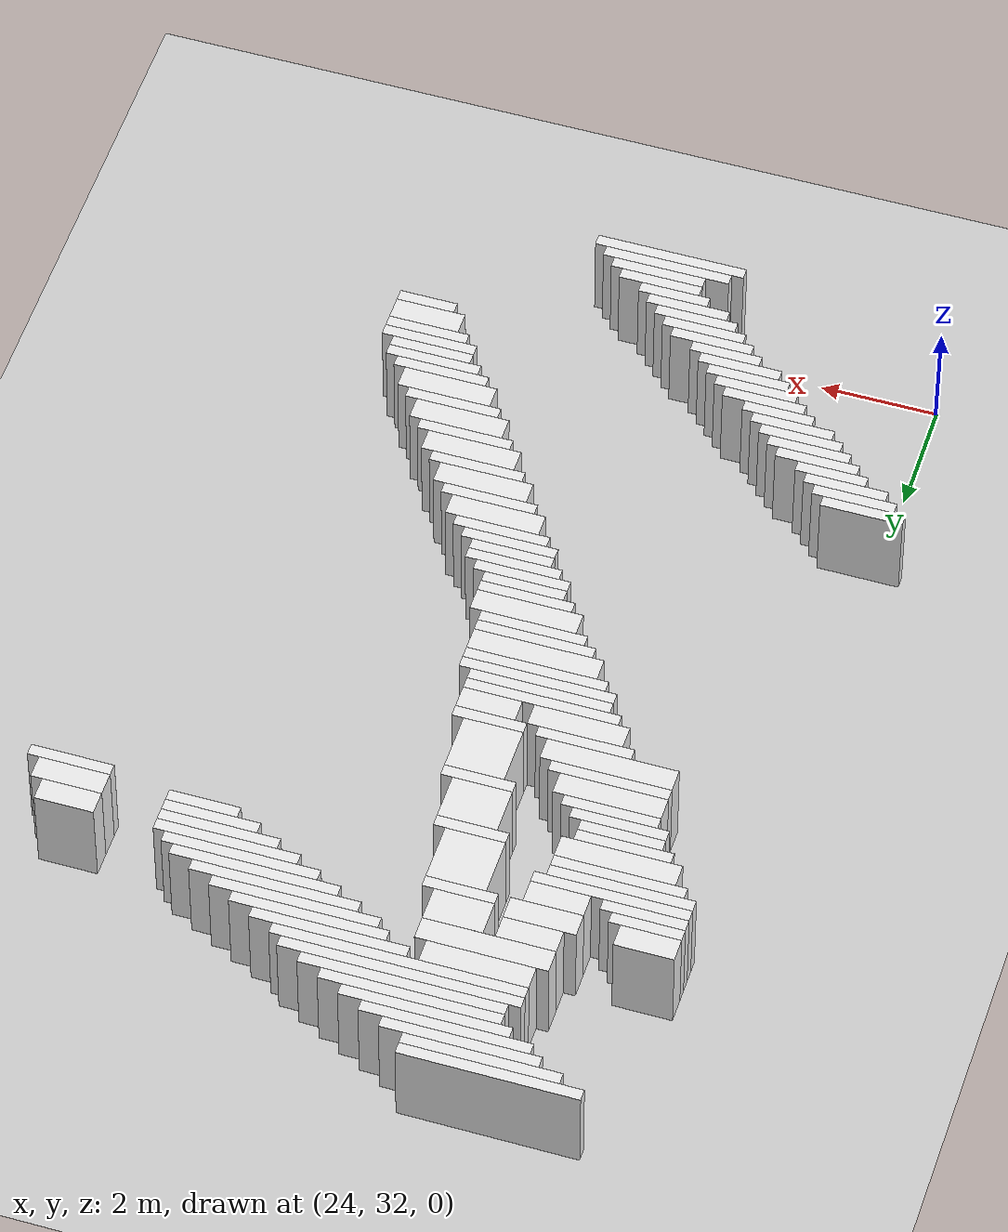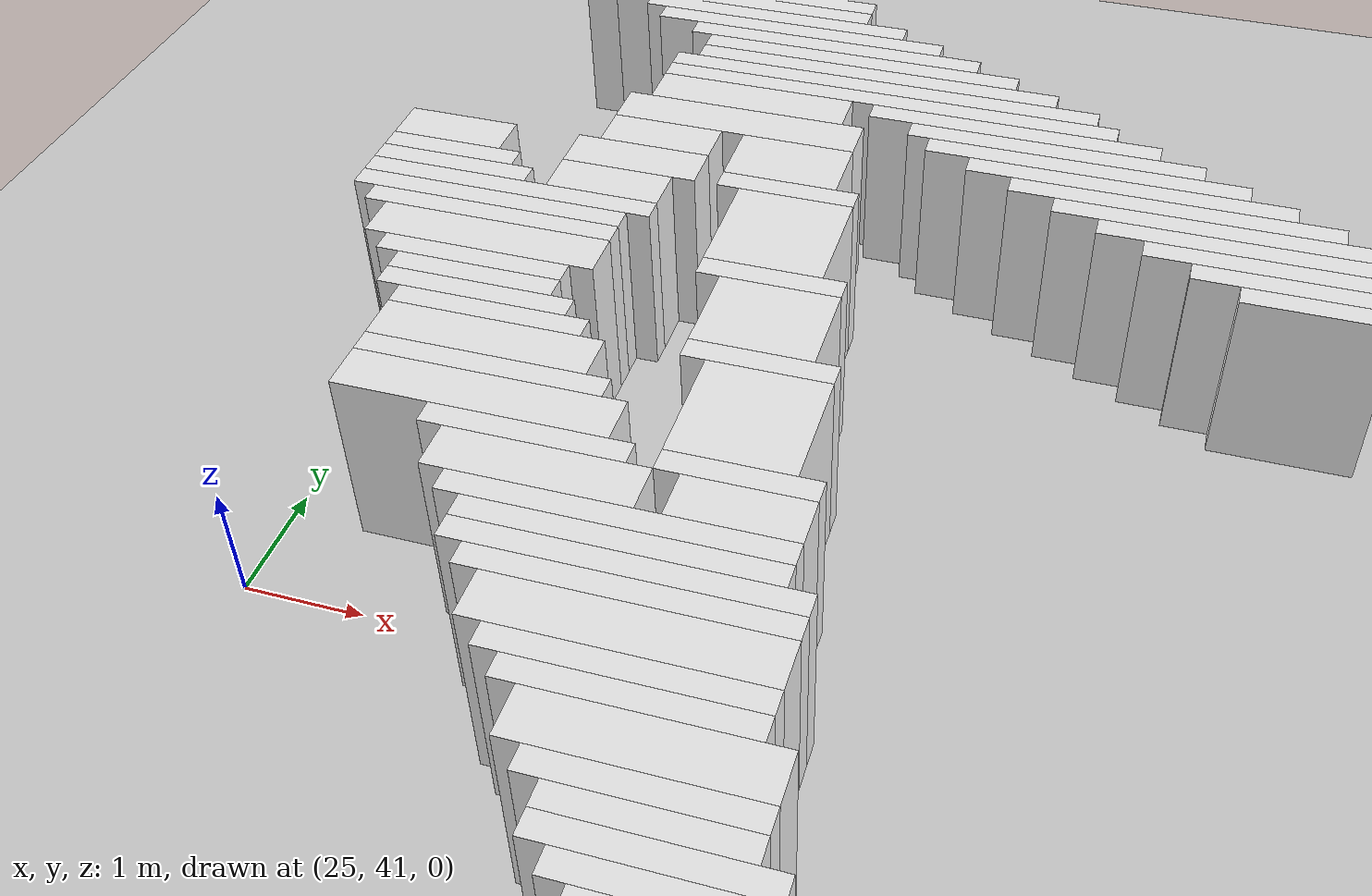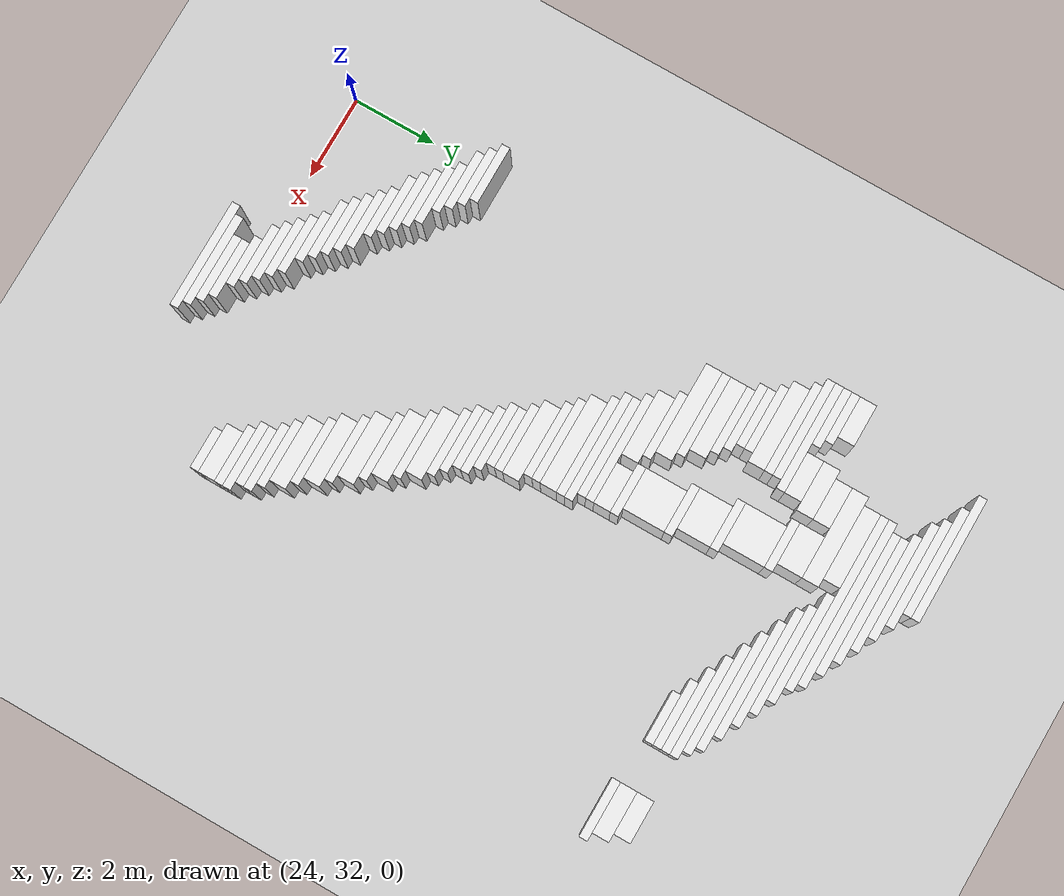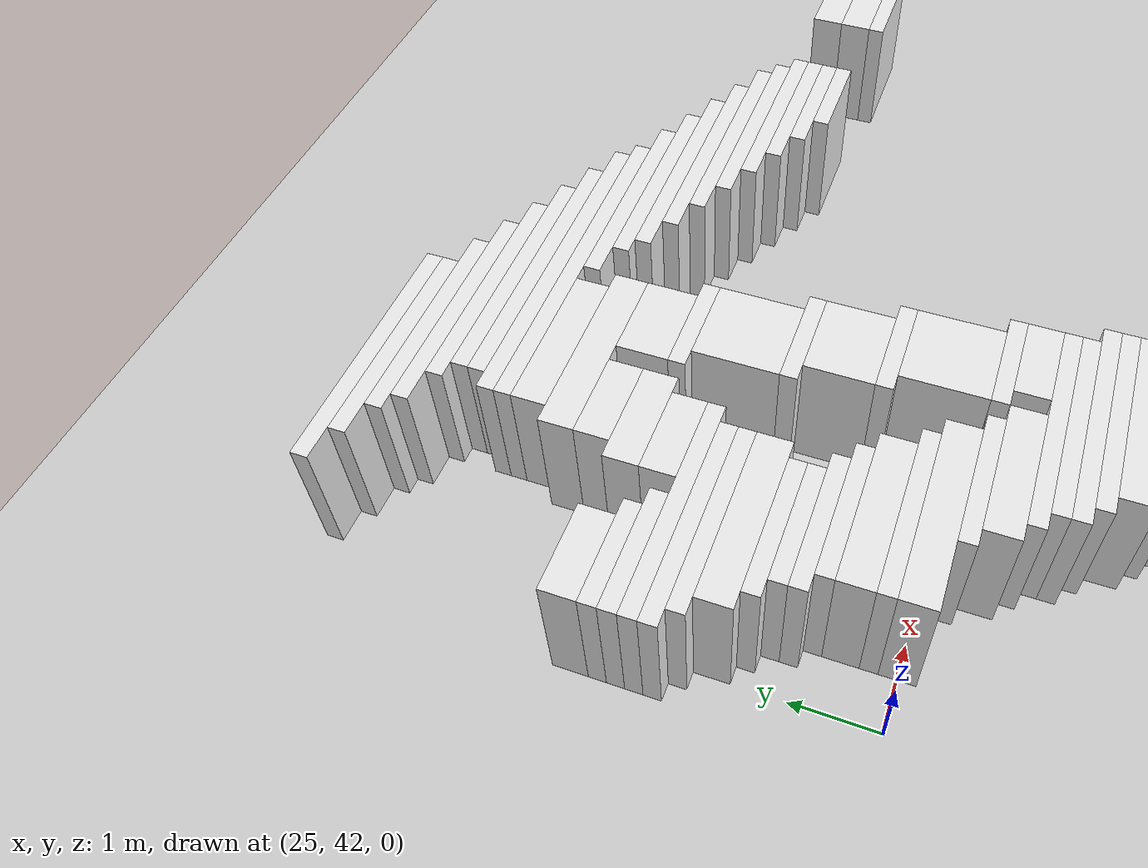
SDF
<sdf version="1.7">
 <world name="default">
  <model name="ground_plane">
   <static>1</static>
   <link name="link">
    <collision name="collision">
     <geometry><plane><normal>0 0 1</normal><size>120 120</size></plane></geometry>
    </collision>
    <visual name="visual">
     <geometry><plane><normal>0 0 1</normal><size>120 120</size></plane></geometry>
     <material>
      <script><uri>file://media/materials/scripts/gazebo.material</uri><name>Gazebo/Grey</name></script>
     </material>
    </visual>
   </link>
  </model>
  <model name="random_complex_02_model">
   <static>1</static>
   <link name="obs_6">
    <pose>26.7000 48.3000 0.8000 0 0 0</pose>
    <collision name="obs_6_col"><geometry><box><size>3.0000 0.2000 1.6000</size></box></geometry></collision>
    <visual name="obs_6_vis">
     <geometry><box><size>3.0000 0.2000 1.6000</size></box></geometry>
     <material>
      <script><uri>file://media/materials/scripts/gazebo.material</uri><name>Gazebo/White</name></script>
     </material>
    </visual>
   </link>
   <link name="obs_10">
    <pose>26.9000 48.1000 0.8000 0 0 0</pose>
    <collision name="obs_10_col"><geometry><box><size>2.6000 0.2000 1.6000</size></box></geometry></collision>
    <visual name="obs_10_vis">
     <geometry><box><size>2.6000 0.2000 1.6000</size></box></geometry>
     <material>
      <script><uri>file://media/materials/scripts/gazebo.material</uri><name>Gazebo/White</name></script>
     </material>
    </visual>
   </link>
   <link name="obs_17">
    <pose>27.3000 47.9000 0.8000 0 0 0</pose>
    <collision name="obs_17_col"><geometry><box><size>2.6000 0.2000 1.6000</size></box></geometry></collision>
    <visual name="obs_17_vis">
     <geometry><box><size>2.6000 0.2000 1.6000</size></box></geometry>
     <material>
      <script><uri>file://media/materials/scripts/gazebo.material</uri><name>Gazebo/White</name></script>
     </material>
    </visual>
   </link>
   <link name="obs_24">
    <pose>27.6000 47.7000 0.8000 0 0 0</pose>
    <collision name="obs_24_col"><geometry><box><size>2.8000 0.2000 1.6000</size></box></geometry></collision>
    <visual name="obs_24_vis">
     <geometry><box><size>2.8000 0.2000 1.6000</size></box></geometry>
     <material>
      <script><uri>file://media/materials/scripts/gazebo.material</uri><name>Gazebo/White</name></script>
     </material>
    </visual>
   </link>
   <link name="obs_32">
    <pose>28.0000 47.5000 0.8000 0 0 0</pose>
    <collision name="obs_32_col"><geometry><box><size>2.8000 0.2000 1.6000</size></box></geometry></collision>
    <visual name="obs_32_vis">
     <geometry><box><size>2.8000 0.2000 1.6000</size></box></geometry>
     <material>
      <script><uri>file://media/materials/scripts/gazebo.material</uri><name>Gazebo/White</name></script>
     </material>
    </visual>
   </link>
   <link name="obs_39">
    <pose>28.3000 47.3000 0.8000 0 0 0</pose>
    <collision name="obs_39_col"><geometry><box><size>3.0000 0.2000 1.6000</size></box></geometry></collision>
    <visual name="obs_39_vis">
     <geometry><box><size>3.0000 0.2000 1.6000</size></box></geometry>
     <material>
      <script><uri>file://media/materials/scripts/gazebo.material</uri><name>Gazebo/White</name></script>
     </material>
    </visual>
   </link>
   <link name="obs_46">
    <pose>28.5000 47.1000 0.8000 0 0 0</pose>
    <collision name="obs_46_col"><geometry><box><size>3.4000 0.2000 1.6000</size></box></geometry></collision>
    <visual name="obs_46_vis">
     <geometry><box><size>3.4000 0.2000 1.6000</size></box></geometry>
     <material>
      <script><uri>file://media/materials/scripts/gazebo.material</uri><name>Gazebo/White</name></script>
     </material>
    </visual>
   </link>
   <link name="obs_52">
    <pose>28.6000 46.9000 0.8000 0 0 0</pose>
    <collision name="obs_52_col"><geometry><box><size>4.0000 0.2000 1.6000</size></box></geometry></collision>
    <visual name="obs_52_vis">
     <geometry><box><size>4.0000 0.2000 1.6000</size></box></geometry>
     <material>
      <script><uri>file://media/materials/scripts/gazebo.material</uri><name>Gazebo/White</name></script>
     </material>
    </visual>
   </link>
   <link name="obs_59">
    <pose>28.7000 46.7000 0.8000 0 0 0</pose>
    <collision name="obs_59_col"><geometry><box><size>4.2000 0.2000 1.6000</size></box></geometry></collision>
    <visual name="obs_59_vis">
     <geometry><box><size>4.2000 0.2000 1.6000</size></box></geometry>
     <material>
      <script><uri>file://media/materials/scripts/gazebo.material</uri><name>Gazebo/White</name></script>
     </material>
    </visual>
   </link>
   <link name="obs_66">
    <pose>29.9000 46.5000 0.8000 0 0 0</pose>
    <collision name="obs_66_col"><geometry><box><size>2.6000 0.2000 1.6000</size></box></geometry></collision>
    <visual name="obs_66_vis">
     <geometry><box><size>2.6000 0.2000 1.6000</size></box></geometry>
     <material>
      <script><uri>file://media/materials/scripts/gazebo.material</uri><name>Gazebo/White</name></script>
     </material>
    </visual>
   </link>
   <link name="obs_68">
    <pose>27.5000 46.4000 0.8000 0 0 0</pose>
    <collision name="obs_68_col"><geometry><box><size>1.8000 0.4000 1.6000</size></box></geometry></collision>
    <visual name="obs_68_vis">
     <geometry><box><size>1.8000 0.4000 1.6000</size></box></geometry>
     <material>
      <script><uri>file://media/materials/scripts/gazebo.material</uri><name>Gazebo/White</name></script>
     </material>
    </visual>
   </link>
   <link name="obs_74">
    <pose>30.3000 46.3000 0.8000 0 0 0</pose>
    <collision name="obs_74_col"><geometry><box><size>2.6000 0.2000 1.6000</size></box></geometry></collision>
    <visual name="obs_74_vis">
     <geometry><box><size>2.6000 0.2000 1.6000</size></box></geometry>
     <material>
      <script><uri>file://media/materials/scripts/gazebo.material</uri><name>Gazebo/White</name></script>
     </material>
    </visual>
   </link>
   <link name="obs_82">
    <pose>30.6000 46.1000 0.8000 0 0 0</pose>
    <collision name="obs_82_col"><geometry><box><size>2.8000 0.2000 1.6000</size></box></geometry></collision>
    <visual name="obs_82_vis">
     <geometry><box><size>2.8000 0.2000 1.6000</size></box></geometry>
     <material>
      <script><uri>file://media/materials/scripts/gazebo.material</uri><name>Gazebo/White</name></script>
     </material>
    </visual>
   </link>
   <link name="obs_84">
    <pose>27.5000 46.0000 0.8000 0 0 0</pose>
    <collision name="obs_84_col"><geometry><box><size>2.2000 0.4000 1.6000</size></box></geometry></collision>
    <visual name="obs_84_vis">
     <geometry><box><size>2.2000 0.4000 1.6000</size></box></geometry>
     <material>
      <script><uri>file://media/materials/scripts/gazebo.material</uri><name>Gazebo/White</name></script>
     </material>
    </visual>
   </link>
   <link name="obs_90">
    <pose>31.0000 45.9000 0.8000 0 0 0</pose>
    <collision name="obs_90_col"><geometry><box><size>2.8000 0.2000 1.6000</size></box></geometry></collision>
    <visual name="obs_90_vis">
     <geometry><box><size>2.8000 0.2000 1.6000</size></box></geometry>
     <material>
      <script><uri>file://media/materials/scripts/gazebo.material</uri><name>Gazebo/White</name></script>
     </material>
    </visual>
   </link>
   <link name="obs_97">
    <pose>31.4000 45.7000 0.8000 0 0 0</pose>
    <collision name="obs_97_col"><geometry><box><size>2.8000 0.2000 1.6000</size></box></geometry></collision>
    <visual name="obs_97_vis">
     <geometry><box><size>2.8000 0.2000 1.6000</size></box></geometry>
     <material>
      <script><uri>file://media/materials/scripts/gazebo.material</uri><name>Gazebo/White</name></script>
     </material>
    </visual>
   </link>
   <link name="obs_98">
    <pose>26.9000 45.6000 0.8000 0 0 0</pose>
    <collision name="obs_98_col"><geometry><box><size>1.0000 0.4000 1.6000</size></box></geometry></collision>
    <visual name="obs_98_vis">
     <geometry><box><size>1.0000 0.4000 1.6000</size></box></geometry>
     <material>
      <script><uri>file://media/materials/scripts/gazebo.material</uri><name>Gazebo/White</name></script>
     </material>
    </visual>
   </link>
   <link name="obs_104">
    <pose>31.7000 45.5000 0.8000 0 0 0</pose>
    <collision name="obs_104_col"><geometry><box><size>2.6000 0.2000 1.6000</size></box></geometry></collision>
    <visual name="obs_104_vis">
     <geometry><box><size>2.6000 0.2000 1.6000</size></box></geometry>
     <material>
      <script><uri>file://media/materials/scripts/gazebo.material</uri><name>Gazebo/White</name></script>
     </material>
    </visual>
   </link>
   <link name="obs_106">
    <pose>28.1000 45.5000 0.8000 0 0 0</pose>
    <collision name="obs_106_col"><geometry><box><size>1.0000 0.6000 1.6000</size></box></geometry></collision>
    <visual name="obs_106_vis">
     <geometry><box><size>1.0000 0.6000 1.6000</size></box></geometry>
     <material>
      <script><uri>file://media/materials/scripts/gazebo.material</uri><name>Gazebo/White</name></script>
     </material>
    </visual>
   </link>
   <link name="obs_114">
    <pose>32.0000 45.3000 0.8000 0 0 0</pose>
    <collision name="obs_114_col"><geometry><box><size>2.4000 0.2000 1.6000</size></box></geometry></collision>
    <visual name="obs_114_vis">
     <geometry><box><size>2.4000 0.2000 1.6000</size></box></geometry>
     <material>
      <script><uri>file://media/materials/scripts/gazebo.material</uri><name>Gazebo/White</name></script>
     </material>
    </visual>
   </link>
   <link name="obs_115">
    <pose>25.1000 45.2000 0.8000 0 0 0</pose>
    <collision name="obs_115_col"><geometry><box><size>1.0000 0.4000 1.6000</size></box></geometry></collision>
    <visual name="obs_115_vis">
     <geometry><box><size>1.0000 0.4000 1.6000</size></box></geometry>
     <material>
      <script><uri>file://media/materials/scripts/gazebo.material</uri><name>Gazebo/White</name></script>
     </material>
    </visual>
   </link>
   <link name="obs_116">
    <pose>26.8000 45.2000 0.8000 0 0 0</pose>
    <collision name="obs_116_col"><geometry><box><size>1.2000 0.4000 1.6000</size></box></geometry></collision>
    <visual name="obs_116_vis">
     <geometry><box><size>1.2000 0.4000 1.6000</size></box></geometry>
     <material>
      <script><uri>file://media/materials/scripts/gazebo.material</uri><name>Gazebo/White</name></script>
     </material>
    </visual>
   </link>
   <link name="obs_117">
    <pose>34.7000 45.2000 0.8000 0 0 0</pose>
    <collision name="obs_117_col"><geometry><box><size>1.0000 0.4000 1.6000</size></box></geometry></collision>
    <visual name="obs_117_vis">
     <geometry><box><size>1.0000 0.4000 1.6000</size></box></geometry>
     <material>
      <script><uri>file://media/materials/scripts/gazebo.material</uri><name>Gazebo/White</name></script>
     </material>
    </visual>
   </link>
   <link name="obs_125">
    <pose>28.2000 45.1000 0.8000 0 0 0</pose>
    <collision name="obs_125_col"><geometry><box><size>1.2000 0.2000 1.6000</size></box></geometry></collision>
    <visual name="obs_125_vis">
     <geometry><box><size>1.2000 0.2000 1.6000</size></box></geometry>
     <material>
      <script><uri>file://media/materials/scripts/gazebo.material</uri><name>Gazebo/White</name></script>
     </material>
    </visual>
   </link>
   <link name="obs_126">
    <pose>32.2000 45.1000 0.8000 0 0 0</pose>
    <collision name="obs_126_col"><geometry><box><size>2.0000 0.2000 1.6000</size></box></geometry></collision>
    <visual name="obs_126_vis">
     <geometry><box><size>2.0000 0.2000 1.6000</size></box></geometry>
     <material>
      <script><uri>file://media/materials/scripts/gazebo.material</uri><name>Gazebo/White</name></script>
     </material>
    </visual>
   </link>
   <link name="obs_133">
    <pose>25.2000 44.9000 0.8000 0 0 0</pose>
    <collision name="obs_133_col"><geometry><box><size>1.2000 0.2000 1.6000</size></box></geometry></collision>
    <visual name="obs_133_vis">
     <geometry><box><size>1.2000 0.2000 1.6000</size></box></geometry>
     <material>
      <script><uri>file://media/materials/scripts/gazebo.material</uri><name>Gazebo/White</name></script>
     </material>
    </visual>
   </link>
   <link name="obs_134">
    <pose>32.4000 44.9000 0.8000 0 0 0</pose>
    <collision name="obs_134_col"><geometry><box><size>1.6000 0.2000 1.6000</size></box></geometry></collision>
    <visual name="obs_134_vis">
     <geometry><box><size>1.6000 0.2000 1.6000</size></box></geometry>
     <material>
      <script><uri>file://media/materials/scripts/gazebo.material</uri><name>Gazebo/White</name></script>
     </material>
    </visual>
   </link>
   <link name="obs_135">
    <pose>26.7000 44.8000 0.8000 0 0 0</pose>
    <collision name="obs_135_col"><geometry><box><size>1.0000 0.4000 1.6000</size></box></geometry></collision>
    <visual name="obs_135_vis">
     <geometry><box><size>1.0000 0.4000 1.6000</size></box></geometry>
     <material>
      <script><uri>file://media/materials/scripts/gazebo.material</uri><name>Gazebo/White</name></script>
     </material>
    </visual>
   </link>
   <link name="obs_136">
    <pose>34.8000 44.8000 0.8000 0 0 0</pose>
    <collision name="obs_136_col"><geometry><box><size>1.2000 0.4000 1.6000</size></box></geometry></collision>
    <visual name="obs_136_vis">
     <geometry><box><size>1.2000 0.4000 1.6000</size></box></geometry>
     <material>
      <script><uri>file://media/materials/scripts/gazebo.material</uri><name>Gazebo/White</name></script>
     </material>
    </visual>
   </link>
   <link name="obs_141">
    <pose>25.3000 44.7000 0.8000 0 0 0</pose>
    <collision name="obs_141_col"><geometry><box><size>1.4000 0.2000 1.6000</size></box></geometry></collision>
    <visual name="obs_141_vis">
     <geometry><box><size>1.4000 0.2000 1.6000</size></box></geometry>
     <material>
      <script><uri>file://media/materials/scripts/gazebo.material</uri><name>Gazebo/White</name></script>
     </material>
    </visual>
   </link>
   <link name="obs_142">
    <pose>32.6000 44.7000 0.8000 0 0 0</pose>
    <collision name="obs_142_col"><geometry><box><size>1.2000 0.2000 1.6000</size></box></geometry></collision>
    <visual name="obs_142_vis">
     <geometry><box><size>1.2000 0.2000 1.6000</size></box></geometry>
     <material>
      <script><uri>file://media/materials/scripts/gazebo.material</uri><name>Gazebo/White</name></script>
     </material>
    </visual>
   </link>
   <link name="obs_149">
    <pose>25.9000 44.5000 0.8000 0 0 0</pose>
    <collision name="obs_149_col"><geometry><box><size>2.6000 0.2000 1.6000</size></box></geometry></collision>
    <visual name="obs_149_vis">
     <geometry><box><size>2.6000 0.2000 1.6000</size></box></geometry>
     <material>
      <script><uri>file://media/materials/scripts/gazebo.material</uri><name>Gazebo/White</name></script>
     </material>
    </visual>
   </link>
   <link name="obs_150">
    <pose>34.9000 44.5000 0.8000 0 0 0</pose>
    <collision name="obs_150_col"><geometry><box><size>1.4000 0.2000 1.6000</size></box></geometry></collision>
    <visual name="obs_150_vis">
     <geometry><box><size>1.4000 0.2000 1.6000</size></box></geometry>
     <material>
      <script><uri>file://media/materials/scripts/gazebo.material</uri><name>Gazebo/White</name></script>
     </material>
    </visual>
   </link>
   <link name="obs_155">
    <pose>25.8000 44.3000 0.8000 0 0 0</pose>
    <collision name="obs_155_col"><geometry><box><size>2.4000 0.2000 1.6000</size></box></geometry></collision>
    <visual name="obs_155_vis">
     <geometry><box><size>2.4000 0.2000 1.6000</size></box></geometry>
     <material>
      <script><uri>file://media/materials/scripts/gazebo.material</uri><name>Gazebo/White</name></script>
     </material>
    </visual>
   </link>
   <link name="obs_156">
    <pose>28.3000 44.5000 0.8000 0 0 0</pose>
    <collision name="obs_156_col"><geometry><box><size>1.0000 1.0000 1.6000</size></box></geometry></collision>
    <visual name="obs_156_vis">
     <geometry><box><size>1.0000 1.0000 1.6000</size></box></geometry>
     <material>
      <script><uri>file://media/materials/scripts/gazebo.material</uri><name>Gazebo/White</name></script>
     </material>
    </visual>
   </link>
   <link name="obs_163">
    <pose>25.9000 44.1000 0.8000 0 0 0</pose>
    <collision name="obs_163_col"><geometry><box><size>2.2000 0.2000 1.6000</size></box></geometry></collision>
    <visual name="obs_163_vis">
     <geometry><box><size>2.2000 0.2000 1.6000</size></box></geometry>
     <material>
      <script><uri>file://media/materials/scripts/gazebo.material</uri><name>Gazebo/White</name></script>
     </material>
    </visual>
   </link>
   <link name="obs_171">
    <pose>28.4000 43.9000 0.8000 0 0 0</pose>
    <collision name="obs_171_col"><geometry><box><size>1.2000 0.2000 1.6000</size></box></geometry></collision>
    <visual name="obs_171_vis">
     <geometry><box><size>1.2000 0.2000 1.6000</size></box></geometry>
     <material>
      <script><uri>file://media/materials/scripts/gazebo.material</uri><name>Gazebo/White</name></script>
     </material>
    </visual>
   </link>
   <link name="obs_172">
    <pose>26.0000 43.8000 0.8000 0 0 0</pose>
    <collision name="obs_172_col"><geometry><box><size>2.0000 0.4000 1.6000</size></box></geometry></collision>
    <visual name="obs_172_vis">
     <geometry><box><size>2.0000 0.4000 1.6000</size></box></geometry>
     <material>
      <script><uri>file://media/materials/scripts/gazebo.material</uri><name>Gazebo/White</name></script>
     </material>
    </visual>
   </link>
   <link name="obs_185">
    <pose>26.0000 43.5000 0.8000 0 0 0</pose>
    <collision name="obs_185_col"><geometry><box><size>1.6000 0.2000 1.6000</size></box></geometry></collision>
    <visual name="obs_185_vis">
     <geometry><box><size>1.6000 0.2000 1.6000</size></box></geometry>
     <material>
      <script><uri>file://media/materials/scripts/gazebo.material</uri><name>Gazebo/White</name></script>
     </material>
    </visual>
   </link>
   <link name="obs_191">
    <pose>26.1000 43.3000 0.8000 0 0 0</pose>
    <collision name="obs_191_col"><geometry><box><size>1.4000 0.2000 1.6000</size></box></geometry></collision>
    <visual name="obs_191_vis">
     <geometry><box><size>1.4000 0.2000 1.6000</size></box></geometry>
     <material>
      <script><uri>file://media/materials/scripts/gazebo.material</uri><name>Gazebo/White</name></script>
     </material>
    </visual>
   </link>
   <link name="obs_192">
    <pose>28.5000 43.4000 0.8000 0 0 0</pose>
    <collision name="obs_192_col"><geometry><box><size>1.0000 0.8000 1.6000</size></box></geometry></collision>
    <visual name="obs_192_vis">
     <geometry><box><size>1.0000 0.8000 1.6000</size></box></geometry>
     <material>
      <script><uri>file://media/materials/scripts/gazebo.material</uri><name>Gazebo/White</name></script>
     </material>
    </visual>
   </link>
   <link name="obs_199">
    <pose>26.2000 43.1000 0.8000 0 0 0</pose>
    <collision name="obs_199_col"><geometry><box><size>1.6000 0.2000 1.6000</size></box></geometry></collision>
    <visual name="obs_199_vis">
     <geometry><box><size>1.6000 0.2000 1.6000</size></box></geometry>
     <material>
      <script><uri>file://media/materials/scripts/gazebo.material</uri><name>Gazebo/White</name></script>
     </material>
    </visual>
   </link>
   <link name="obs_205">
    <pose>26.4000 42.9000 0.8000 0 0 0</pose>
    <collision name="obs_205_col"><geometry><box><size>1.6000 0.2000 1.6000</size></box></geometry></collision>
    <visual name="obs_205_vis">
     <geometry><box><size>1.6000 0.2000 1.6000</size></box></geometry>
     <material>
      <script><uri>file://media/materials/scripts/gazebo.material</uri><name>Gazebo/White</name></script>
     </material>
    </visual>
   </link>
   <link name="obs_206">
    <pose>28.6000 42.9000 0.8000 0 0 0</pose>
    <collision name="obs_206_col"><geometry><box><size>1.2000 0.2000 1.6000</size></box></geometry></collision>
    <visual name="obs_206_vis">
     <geometry><box><size>1.2000 0.2000 1.6000</size></box></geometry>
     <material>
      <script><uri>file://media/materials/scripts/gazebo.material</uri><name>Gazebo/White</name></script>
     </material>
    </visual>
   </link>
   <link name="obs_215">
    <pose>26.5000 42.6000 0.8000 0 0 0</pose>
    <collision name="obs_215_col"><geometry><box><size>1.8000 0.4000 1.6000</size></box></geometry></collision>
    <visual name="obs_215_vis">
     <geometry><box><size>1.8000 0.4000 1.6000</size></box></geometry>
     <material>
      <script><uri>file://media/materials/scripts/gazebo.material</uri><name>Gazebo/White</name></script>
     </material>
    </visual>
   </link>
   <link name="obs_225">
    <pose>26.6000 42.3000 0.8000 0 0 0</pose>
    <collision name="obs_225_col"><geometry><box><size>2.0000 0.2000 1.6000</size></box></geometry></collision>
    <visual name="obs_225_vis">
     <geometry><box><size>2.0000 0.2000 1.6000</size></box></geometry>
     <material>
      <script><uri>file://media/materials/scripts/gazebo.material</uri><name>Gazebo/White</name></script>
     </material>
    </visual>
   </link>
   <link name="obs_234">
    <pose>28.7000 42.3000 0.8000 0 0 0</pose>
    <collision name="obs_234_col"><geometry><box><size>1.0000 1.0000 1.6000</size></box></geometry></collision>
    <visual name="obs_234_vis">
     <geometry><box><size>1.0000 1.0000 1.6000</size></box></geometry>
     <material>
      <script><uri>file://media/materials/scripts/gazebo.material</uri><name>Gazebo/White</name></script>
     </material>
    </visual>
   </link>
   <link name="obs_236">
    <pose>26.7000 42.0000 0.8000 0 0 0</pose>
    <collision name="obs_236_col"><geometry><box><size>2.2000 0.4000 1.6000</size></box></geometry></collision>
    <visual name="obs_236_vis">
     <geometry><box><size>2.2000 0.4000 1.6000</size></box></geometry>
     <material>
      <script><uri>file://media/materials/scripts/gazebo.material</uri><name>Gazebo/White</name></script>
     </material>
    </visual>
   </link>
   <link name="obs_245">
    <pose>27.2000 41.7000 0.8000 0 0 0</pose>
    <collision name="obs_245_col"><geometry><box><size>1.6000 0.2000 1.6000</size></box></geometry></collision>
    <visual name="obs_245_vis">
     <geometry><box><size>1.6000 0.2000 1.6000</size></box></geometry>
     <material>
      <script><uri>file://media/materials/scripts/gazebo.material</uri><name>Gazebo/White</name></script>
     </material>
    </visual>
   </link>
   <link name="obs_246">
    <pose>28.8000 41.7000 0.8000 0 0 0</pose>
    <collision name="obs_246_col"><geometry><box><size>1.2000 0.2000 1.6000</size></box></geometry></collision>
    <visual name="obs_246_vis">
     <geometry><box><size>1.2000 0.2000 1.6000</size></box></geometry>
     <material>
      <script><uri>file://media/materials/scripts/gazebo.material</uri><name>Gazebo/White</name></script>
     </material>
    </visual>
   </link>
   <link name="obs_259">
    <pose>27.4000 41.4000 0.8000 0 0 0</pose>
    <collision name="obs_259_col"><geometry><box><size>1.6000 0.4000 1.6000</size></box></geometry></collision>
    <visual name="obs_259_vis">
     <geometry><box><size>1.6000 0.4000 1.6000</size></box></geometry>
     <material>
      <script><uri>file://media/materials/scripts/gazebo.material</uri><name>Gazebo/White</name></script>
     </material>
    </visual>
   </link>
   <link name="obs_260">
    <pose>28.9000 41.4000 0.8000 0 0 0</pose>
    <collision name="obs_260_col"><geometry><box><size>1.0000 0.4000 1.6000</size></box></geometry></collision>
    <visual name="obs_260_vis">
     <geometry><box><size>1.0000 0.4000 1.6000</size></box></geometry>
     <material>
      <script><uri>file://media/materials/scripts/gazebo.material</uri><name>Gazebo/White</name></script>
     </material>
    </visual>
   </link>
   <link name="obs_277">
    <pose>28.1000 41.1000 0.8000 0 0 0</pose>
    <collision name="obs_277_col"><geometry><box><size>2.6000 0.2000 1.6000</size></box></geometry></collision>
    <visual name="obs_277_vis">
     <geometry><box><size>2.6000 0.2000 1.6000</size></box></geometry>
     <material>
      <script><uri>file://media/materials/scripts/gazebo.material</uri><name>Gazebo/White</name></script>
     </material>
    </visual>
   </link>
   <link name="obs_286">
    <pose>28.2000 40.9000 0.8000 0 0 0</pose>
    <collision name="obs_286_col"><geometry><box><size>2.4000 0.2000 1.6000</size></box></geometry></collision>
    <visual name="obs_286_vis">
     <geometry><box><size>2.4000 0.2000 1.6000</size></box></geometry>
     <material>
      <script><uri>file://media/materials/scripts/gazebo.material</uri><name>Gazebo/White</name></script>
     </material>
    </visual>
   </link>
   <link name="obs_296">
    <pose>28.3000 40.7000 0.8000 0 0 0</pose>
    <collision name="obs_296_col"><geometry><box><size>2.6000 0.2000 1.6000</size></box></geometry></collision>
    <visual name="obs_296_vis">
     <geometry><box><size>2.6000 0.2000 1.6000</size></box></geometry>
     <material>
      <script><uri>file://media/materials/scripts/gazebo.material</uri><name>Gazebo/White</name></script>
     </material>
    </visual>
   </link>
   <link name="obs_308">
    <pose>28.4000 40.5000 0.8000 0 0 0</pose>
    <collision name="obs_308_col"><geometry><box><size>2.4000 0.2000 1.6000</size></box></geometry></collision>
    <visual name="obs_308_vis">
     <geometry><box><size>2.4000 0.2000 1.6000</size></box></geometry>
     <material>
      <script><uri>file://media/materials/scripts/gazebo.material</uri><name>Gazebo/White</name></script>
     </material>
    </visual>
   </link>
   <link name="obs_321">
    <pose>28.5000 40.2000 0.8000 0 0 0</pose>
    <collision name="obs_321_col"><geometry><box><size>2.2000 0.4000 1.6000</size></box></geometry></collision>
    <visual name="obs_321_vis">
     <geometry><box><size>2.2000 0.4000 1.6000</size></box></geometry>
     <material>
      <script><uri>file://media/materials/scripts/gazebo.material</uri><name>Gazebo/White</name></script>
     </material>
    </visual>
   </link>
   <link name="obs_337">
    <pose>28.6000 39.9000 0.8000 0 0 0</pose>
    <collision name="obs_337_col"><geometry><box><size>2.0000 0.2000 1.6000</size></box></geometry></collision>
    <visual name="obs_337_vis">
     <geometry><box><size>2.0000 0.2000 1.6000</size></box></geometry>
     <material>
      <script><uri>file://media/materials/scripts/gazebo.material</uri><name>Gazebo/White</name></script>
     </material>
    </visual>
   </link>
   <link name="obs_343">
    <pose>28.7000 39.7000 0.8000 0 0 0</pose>
    <collision name="obs_343_col"><geometry><box><size>1.8000 0.2000 1.6000</size></box></geometry></collision>
    <visual name="obs_343_vis">
     <geometry><box><size>1.8000 0.2000 1.6000</size></box></geometry>
     <material>
      <script><uri>file://media/materials/scripts/gazebo.material</uri><name>Gazebo/White</name></script>
     </material>
    </visual>
   </link>
   <link name="obs_354">
    <pose>28.9000 39.4000 0.8000 0 0 0</pose>
    <collision name="obs_354_col"><geometry><box><size>1.8000 0.4000 1.6000</size></box></geometry></collision>
    <visual name="obs_354_vis">
     <geometry><box><size>1.8000 0.4000 1.6000</size></box></geometry>
     <material>
      <script><uri>file://media/materials/scripts/gazebo.material</uri><name>Gazebo/White</name></script>
     </material>
    </visual>
   </link>
   <link name="obs_368">
    <pose>29.0000 39.1000 0.8000 0 0 0</pose>
    <collision name="obs_368_col"><geometry><box><size>1.6000 0.2000 1.6000</size></box></geometry></collision>
    <visual name="obs_368_vis">
     <geometry><box><size>1.6000 0.2000 1.6000</size></box></geometry>
     <material>
      <script><uri>file://media/materials/scripts/gazebo.material</uri><name>Gazebo/White</name></script>
     </material>
    </visual>
   </link>
   <link name="obs_378">
    <pose>29.1000 38.9000 0.8000 0 0 0</pose>
    <collision name="obs_378_col"><geometry><box><size>1.4000 0.2000 1.6000</size></box></geometry></collision>
    <visual name="obs_378_vis">
     <geometry><box><size>1.4000 0.2000 1.6000</size></box></geometry>
     <material>
      <script><uri>file://media/materials/scripts/gazebo.material</uri><name>Gazebo/White</name></script>
     </material>
    </visual>
   </link>
   <link name="obs_388">
    <pose>29.2000 38.7000 0.8000 0 0 0</pose>
    <collision name="obs_388_col"><geometry><box><size>1.6000 0.2000 1.6000</size></box></geometry></collision>
    <visual name="obs_388_vis">
     <geometry><box><size>1.6000 0.2000 1.6000</size></box></geometry>
     <material>
      <script><uri>file://media/materials/scripts/gazebo.material</uri><name>Gazebo/White</name></script>
     </material>
    </visual>
   </link>
   <link name="obs_398">
    <pose>29.4000 38.5000 0.8000 0 0 0</pose>
    <collision name="obs_398_col"><geometry><box><size>1.6000 0.2000 1.6000</size></box></geometry></collision>
    <visual name="obs_398_vis">
     <geometry><box><size>1.6000 0.2000 1.6000</size></box></geometry>
     <material>
      <script><uri>file://media/materials/scripts/gazebo.material</uri><name>Gazebo/White</name></script>
     </material>
    </visual>
   </link>
   <link name="obs_408">
    <pose>29.5000 38.3000 0.8000 0 0 0</pose>
    <collision name="obs_408_col"><geometry><box><size>1.4000 0.2000 1.6000</size></box></geometry></collision>
    <visual name="obs_408_vis">
     <geometry><box><size>1.4000 0.2000 1.6000</size></box></geometry>
     <material>
      <script><uri>file://media/materials/scripts/gazebo.material</uri><name>Gazebo/White</name></script>
     </material>
    </visual>
   </link>
   <link name="obs_416">
    <pose>29.6000 38.1000 0.8000 0 0 0</pose>
    <collision name="obs_416_col"><geometry><box><size>1.6000 0.2000 1.6000</size></box></geometry></collision>
    <visual name="obs_416_vis">
     <geometry><box><size>1.6000 0.2000 1.6000</size></box></geometry>
     <material>
      <script><uri>file://media/materials/scripts/gazebo.material</uri><name>Gazebo/White</name></script>
     </material>
    </visual>
   </link>
   <link name="obs_426">
    <pose>29.8000 37.9000 0.8000 0 0 0</pose>
    <collision name="obs_426_col"><geometry><box><size>1.6000 0.2000 1.6000</size></box></geometry></collision>
    <visual name="obs_426_vis">
     <geometry><box><size>1.6000 0.2000 1.6000</size></box></geometry>
     <material>
      <script><uri>file://media/materials/scripts/gazebo.material</uri><name>Gazebo/White</name></script>
     </material>
    </visual>
   </link>
   <link name="obs_435">
    <pose>30.0000 37.6000 0.8000 0 0 0</pose>
    <collision name="obs_435_col"><geometry><box><size>1.6000 0.4000 1.6000</size></box></geometry></collision>
    <visual name="obs_435_vis">
     <geometry><box><size>1.6000 0.4000 1.6000</size></box></geometry>
     <material>
      <script><uri>file://media/materials/scripts/gazebo.material</uri><name>Gazebo/White</name></script>
     </material>
    </visual>
   </link>
   <link name="obs_448">
    <pose>30.2000 37.3000 0.8000 0 0 0</pose>
    <collision name="obs_448_col"><geometry><box><size>1.6000 0.2000 1.6000</size></box></geometry></collision>
    <visual name="obs_448_vis">
     <geometry><box><size>1.6000 0.2000 1.6000</size></box></geometry>
     <material>
      <script><uri>file://media/materials/scripts/gazebo.material</uri><name>Gazebo/White</name></script>
     </material>
    </visual>
   </link>
   <link name="obs_455">
    <pose>30.4000 37.0000 0.8000 0 0 0</pose>
    <collision name="obs_455_col"><geometry><box><size>1.6000 0.4000 1.6000</size></box></geometry></collision>
    <visual name="obs_455_vis">
     <geometry><box><size>1.6000 0.4000 1.6000</size></box></geometry>
     <material>
      <script><uri>file://media/materials/scripts/gazebo.material</uri><name>Gazebo/White</name></script>
     </material>
    </visual>
   </link>
   <link name="obs_468">
    <pose>30.6000 36.7000 0.8000 0 0 0</pose>
    <collision name="obs_468_col"><geometry><box><size>1.6000 0.2000 1.6000</size></box></geometry></collision>
    <visual name="obs_468_vis">
     <geometry><box><size>1.6000 0.2000 1.6000</size></box></geometry>
     <material>
      <script><uri>file://media/materials/scripts/gazebo.material</uri><name>Gazebo/White</name></script>
     </material>
    </visual>
   </link>
   <link name="obs_478">
    <pose>30.8000 36.4000 0.8000 0 0 0</pose>
    <collision name="obs_478_col"><geometry><box><size>1.6000 0.4000 1.6000</size></box></geometry></collision>
    <visual name="obs_478_vis">
     <geometry><box><size>1.6000 0.4000 1.6000</size></box></geometry>
     <material>
      <script><uri>file://media/materials/scripts/gazebo.material</uri><name>Gazebo/White</name></script>
     </material>
    </visual>
   </link>
   <link name="obs_497">
    <pose>31.0000 36.1000 0.8000 0 0 0</pose>
    <collision name="obs_497_col"><geometry><box><size>1.6000 0.2000 1.6000</size></box></geometry></collision>
    <visual name="obs_497_vis">
     <geometry><box><size>1.6000 0.2000 1.6000</size></box></geometry>
     <material>
      <script><uri>file://media/materials/scripts/gazebo.material</uri><name>Gazebo/White</name></script>
     </material>
    </visual>
   </link>
   <link name="obs_509">
    <pose>31.2000 35.8000 0.8000 0 0 0</pose>
    <collision name="obs_509_col"><geometry><box><size>1.6000 0.4000 1.6000</size></box></geometry></collision>
    <visual name="obs_509_vis">
     <geometry><box><size>1.6000 0.4000 1.6000</size></box></geometry>
     <material>
      <script><uri>file://media/materials/scripts/gazebo.material</uri><name>Gazebo/White</name></script>
     </material>
    </visual>
   </link>
   <link name="obs_516">
    <pose>24.3000 35.7000 0.8000 0 0 0</pose>
    <collision name="obs_516_col"><geometry><box><size>1.4000 0.2000 1.6000</size></box></geometry></collision>
    <visual name="obs_516_vis">
     <geometry><box><size>1.4000 0.2000 1.6000</size></box></geometry>
     <material>
      <script><uri>file://media/materials/scripts/gazebo.material</uri><name>Gazebo/White</name></script>
     </material>
    </visual>
   </link>
   <link name="obs_522">
    <pose>24.5000 35.5000 0.8000 0 0 0</pose>
    <collision name="obs_522_col"><geometry><box><size>1.4000 0.2000 1.6000</size></box></geometry></collision>
    <visual name="obs_522_vis">
     <geometry><box><size>1.4000 0.2000 1.6000</size></box></geometry>
     <material>
      <script><uri>file://media/materials/scripts/gazebo.material</uri><name>Gazebo/White</name></script>
     </material>
    </visual>
   </link>
   <link name="obs_523">
    <pose>31.4000 35.5000 0.8000 0 0 0</pose>
    <collision name="obs_523_col"><geometry><box><size>1.6000 0.2000 1.6000</size></box></geometry></collision>
    <visual name="obs_523_vis">
     <geometry><box><size>1.6000 0.2000 1.6000</size></box></geometry>
     <material>
      <script><uri>file://media/materials/scripts/gazebo.material</uri><name>Gazebo/White</name></script>
     </material>
    </visual>
   </link>
   <link name="obs_533">
    <pose>24.7000 35.3000 0.8000 0 0 0</pose>
    <collision name="obs_533_col"><geometry><box><size>1.4000 0.2000 1.6000</size></box></geometry></collision>
    <visual name="obs_533_vis">
     <geometry><box><size>1.4000 0.2000 1.6000</size></box></geometry>
     <material>
      <script><uri>file://media/materials/scripts/gazebo.material</uri><name>Gazebo/White</name></script>
     </material>
    </visual>
   </link>
   <link name="obs_536">
    <pose>31.6000 35.2000 0.8000 0 0 0</pose>
    <collision name="obs_536_col"><geometry><box><size>1.6000 0.4000 1.6000</size></box></geometry></collision>
    <visual name="obs_536_vis">
     <geometry><box><size>1.6000 0.4000 1.6000</size></box></geometry>
     <material>
      <script><uri>file://media/materials/scripts/gazebo.material</uri><name>Gazebo/White</name></script>
     </material>
    </visual>
   </link>
   <link name="obs_541">
    <pose>25.0000 35.1000 0.8000 0 0 0</pose>
    <collision name="obs_541_col"><geometry><box><size>1.2000 0.2000 1.6000</size></box></geometry></collision>
    <visual name="obs_541_vis">
     <geometry><box><size>1.2000 0.2000 1.6000</size></box></geometry>
     <material>
      <script><uri>file://media/materials/scripts/gazebo.material</uri><name>Gazebo/White</name></script>
     </material>
    </visual>
   </link>
   <link name="obs_550">
    <pose>25.3000 34.9000 0.8000 0 0 0</pose>
    <collision name="obs_550_col"><geometry><box><size>1.4000 0.2000 1.6000</size></box></geometry></collision>
    <visual name="obs_550_vis">
     <geometry><box><size>1.4000 0.2000 1.6000</size></box></geometry>
     <material>
      <script><uri>file://media/materials/scripts/gazebo.material</uri><name>Gazebo/White</name></script>
     </material>
    </visual>
   </link>
   <link name="obs_551">
    <pose>31.8000 34.9000 0.8000 0 0 0</pose>
    <collision name="obs_551_col"><geometry><box><size>1.6000 0.2000 1.6000</size></box></geometry></collision>
    <visual name="obs_551_vis">
     <geometry><box><size>1.6000 0.2000 1.6000</size></box></geometry>
     <material>
      <script><uri>file://media/materials/scripts/gazebo.material</uri><name>Gazebo/White</name></script>
     </material>
    </visual>
   </link>
   <link name="obs_559">
    <pose>25.5000 34.7000 0.8000 0 0 0</pose>
    <collision name="obs_559_col"><geometry><box><size>1.4000 0.2000 1.6000</size></box></geometry></collision>
    <visual name="obs_559_vis">
     <geometry><box><size>1.4000 0.2000 1.6000</size></box></geometry>
     <material>
      <script><uri>file://media/materials/scripts/gazebo.material</uri><name>Gazebo/White</name></script>
     </material>
    </visual>
   </link>
   <link name="obs_560">
    <pose>32.0000 34.7000 0.8000 0 0 0</pose>
    <collision name="obs_560_col"><geometry><box><size>1.6000 0.2000 1.6000</size></box></geometry></collision>
    <visual name="obs_560_vis">
     <geometry><box><size>1.6000 0.2000 1.6000</size></box></geometry>
     <material>
      <script><uri>file://media/materials/scripts/gazebo.material</uri><name>Gazebo/White</name></script>
     </material>
    </visual>
   </link>
   <link name="obs_567">
    <pose>25.7000 34.5000 0.8000 0 0 0</pose>
    <collision name="obs_567_col"><geometry><box><size>1.4000 0.2000 1.6000</size></box></geometry></collision>
    <visual name="obs_567_vis">
     <geometry><box><size>1.4000 0.2000 1.6000</size></box></geometry>
     <material>
      <script><uri>file://media/materials/scripts/gazebo.material</uri><name>Gazebo/White</name></script>
     </material>
    </visual>
   </link>
   <link name="obs_568">
    <pose>32.1000 34.5000 0.8000 0 0 0</pose>
    <collision name="obs_568_col"><geometry><box><size>1.4000 0.2000 1.6000</size></box></geometry></collision>
    <visual name="obs_568_vis">
     <geometry><box><size>1.4000 0.2000 1.6000</size></box></geometry>
     <material>
      <script><uri>file://media/materials/scripts/gazebo.material</uri><name>Gazebo/White</name></script>
     </material>
    </visual>
   </link>
   <link name="obs_575">
    <pose>25.9000 34.3000 0.8000 0 0 0</pose>
    <collision name="obs_575_col"><geometry><box><size>1.4000 0.2000 1.6000</size></box></geometry></collision>
    <visual name="obs_575_vis">
     <geometry><box><size>1.4000 0.2000 1.6000</size></box></geometry>
     <material>
      <script><uri>file://media/materials/scripts/gazebo.material</uri><name>Gazebo/White</name></script>
     </material>
    </visual>
   </link>
   <link name="obs_576">
    <pose>32.2000 34.3000 0.8000 0 0 0</pose>
    <collision name="obs_576_col"><geometry><box><size>1.6000 0.2000 1.6000</size></box></geometry></collision>
    <visual name="obs_576_vis">
     <geometry><box><size>1.6000 0.2000 1.6000</size></box></geometry>
     <material>
      <script><uri>file://media/materials/scripts/gazebo.material</uri><name>Gazebo/White</name></script>
     </material>
    </visual>
   </link>
   <link name="obs_585">
    <pose>26.2000 34.1000 0.8000 0 0 0</pose>
    <collision name="obs_585_col"><geometry><box><size>1.2000 0.2000 1.6000</size></box></geometry></collision>
    <visual name="obs_585_vis">
     <geometry><box><size>1.2000 0.2000 1.6000</size></box></geometry>
     <material>
      <script><uri>file://media/materials/scripts/gazebo.material</uri><name>Gazebo/White</name></script>
     </material>
    </visual>
   </link>
   <link name="obs_586">
    <pose>32.3000 34.1000 0.8000 0 0 0</pose>
    <collision name="obs_586_col"><geometry><box><size>1.4000 0.2000 1.6000</size></box></geometry></collision>
    <visual name="obs_586_vis">
     <geometry><box><size>1.4000 0.2000 1.6000</size></box></geometry>
     <material>
      <script><uri>file://media/materials/scripts/gazebo.material</uri><name>Gazebo/White</name></script>
     </material>
    </visual>
   </link>
   <link name="obs_594">
    <pose>26.5000 33.9000 0.8000 0 0 0</pose>
    <collision name="obs_594_col"><geometry><box><size>1.4000 0.2000 1.6000</size></box></geometry></collision>
    <visual name="obs_594_vis">
     <geometry><box><size>1.4000 0.2000 1.6000</size></box></geometry>
     <material>
      <script><uri>file://media/materials/scripts/gazebo.material</uri><name>Gazebo/White</name></script>
     </material>
    </visual>
   </link>
   <link name="obs_598">
    <pose>32.4000 33.8000 0.8000 0 0 0</pose>
    <collision name="obs_598_col"><geometry><box><size>1.2000 0.4000 1.6000</size></box></geometry></collision>
    <visual name="obs_598_vis">
     <geometry><box><size>1.2000 0.4000 1.6000</size></box></geometry>
     <material>
      <script><uri>file://media/materials/scripts/gazebo.material</uri><name>Gazebo/White</name></script>
     </material>
    </visual>
   </link>
   <link name="obs_604">
    <pose>26.7000 33.7000 0.8000 0 0 0</pose>
    <collision name="obs_604_col"><geometry><box><size>1.4000 0.2000 1.6000</size></box></geometry></collision>
    <visual name="obs_604_vis">
     <geometry><box><size>1.4000 0.2000 1.6000</size></box></geometry>
     <material>
      <script><uri>file://media/materials/scripts/gazebo.material</uri><name>Gazebo/White</name></script>
     </material>
    </visual>
   </link>
   <link name="obs_612">
    <pose>26.9000 33.5000 0.8000 0 0 0</pose>
    <collision name="obs_612_col"><geometry><box><size>1.4000 0.2000 1.6000</size></box></geometry></collision>
    <visual name="obs_612_vis">
     <geometry><box><size>1.4000 0.2000 1.6000</size></box></geometry>
     <material>
      <script><uri>file://media/materials/scripts/gazebo.material</uri><name>Gazebo/White</name></script>
     </material>
    </visual>
   </link>
   <link name="obs_613">
    <pose>32.5000 33.5000 0.8000 0 0 0</pose>
    <collision name="obs_613_col"><geometry><box><size>1.0000 0.2000 1.6000</size></box></geometry></collision>
    <visual name="obs_613_vis">
     <geometry><box><size>1.0000 0.2000 1.6000</size></box></geometry>
     <material>
      <script><uri>file://media/materials/scripts/gazebo.material</uri><name>Gazebo/White</name></script>
     </material>
    </visual>
   </link>
   <link name="obs_623">
    <pose>27.1000 33.3000 0.8000 0 0 0</pose>
    <collision name="obs_623_col"><geometry><box><size>1.4000 0.2000 1.6000</size></box></geometry></collision>
    <visual name="obs_623_vis">
     <geometry><box><size>1.4000 0.2000 1.6000</size></box></geometry>
     <material>
      <script><uri>file://media/materials/scripts/gazebo.material</uri><name>Gazebo/White</name></script>
     </material>
    </visual>
   </link>
   <link name="obs_631">
    <pose>27.4000 33.1000 0.8000 0 0 0</pose>
    <collision name="obs_631_col"><geometry><box><size>1.2000 0.2000 1.6000</size></box></geometry></collision>
    <visual name="obs_631_vis">
     <geometry><box><size>1.2000 0.2000 1.6000</size></box></geometry>
     <material>
      <script><uri>file://media/materials/scripts/gazebo.material</uri><name>Gazebo/White</name></script>
     </material>
    </visual>
   </link>
   <link name="obs_640">
    <pose>27.7000 32.9000 0.8000 0 0 0</pose>
    <collision name="obs_640_col"><geometry><box><size>1.4000 0.2000 1.6000</size></box></geometry></collision>
    <visual name="obs_640_vis">
     <geometry><box><size>1.4000 0.2000 1.6000</size></box></geometry>
     <material>
      <script><uri>file://media/materials/scripts/gazebo.material</uri><name>Gazebo/White</name></script>
     </material>
    </visual>
   </link>
   <link name="obs_651">
    <pose>27.9000 32.7000 0.8000 0 0 0</pose>
    <collision name="obs_651_col"><geometry><box><size>1.4000 0.2000 1.6000</size></box></geometry></collision>
    <visual name="obs_651_vis">
     <geometry><box><size>1.4000 0.2000 1.6000</size></box></geometry>
     <material>
      <script><uri>file://media/materials/scripts/gazebo.material</uri><name>Gazebo/White</name></script>
     </material>
    </visual>
   </link>
   <link name="obs_658">
    <pose>28.1000 32.5000 0.8000 0 0 0</pose>
    <collision name="obs_658_col"><geometry><box><size>1.4000 0.2000 1.6000</size></box></geometry></collision>
    <visual name="obs_658_vis">
     <geometry><box><size>1.4000 0.2000 1.6000</size></box></geometry>
     <material>
      <script><uri>file://media/materials/scripts/gazebo.material</uri><name>Gazebo/White</name></script>
     </material>
    </visual>
   </link>
   <link name="obs_667">
    <pose>28.3000 32.3000 0.8000 0 0 0</pose>
    <collision name="obs_667_col"><geometry><box><size>1.4000 0.2000 1.6000</size></box></geometry></collision>
    <visual name="obs_667_vis">
     <geometry><box><size>1.4000 0.2000 1.6000</size></box></geometry>
     <material>
      <script><uri>file://media/materials/scripts/gazebo.material</uri><name>Gazebo/White</name></script>
     </material>
    </visual>
   </link>
   <link name="obs_676">
    <pose>28.6000 32.1000 0.8000 0 0 0</pose>
    <collision name="obs_676_col"><geometry><box><size>1.2000 0.2000 1.6000</size></box></geometry></collision>
    <visual name="obs_676_vis">
     <geometry><box><size>1.2000 0.2000 1.6000</size></box></geometry>
     <material>
      <script><uri>file://media/materials/scripts/gazebo.material</uri><name>Gazebo/White</name></script>
     </material>
    </visual>
   </link>
   <link name="obs_685">
    <pose>28.9000 31.9000 0.8000 0 0 0</pose>
    <collision name="obs_685_col"><geometry><box><size>1.4000 0.2000 1.6000</size></box></geometry></collision>
    <visual name="obs_685_vis">
     <geometry><box><size>1.4000 0.2000 1.6000</size></box></geometry>
     <material>
      <script><uri>file://media/materials/scripts/gazebo.material</uri><name>Gazebo/White</name></script>
     </material>
    </visual>
   </link>
   <link name="obs_695">
    <pose>29.0000 31.7000 0.8000 0 0 0</pose>
    <collision name="obs_695_col"><geometry><box><size>1.6000 0.2000 1.6000</size></box></geometry></collision>
    <visual name="obs_695_vis">
     <geometry><box><size>1.6000 0.2000 1.6000</size></box></geometry>
     <material>
      <script><uri>file://media/materials/scripts/gazebo.material</uri><name>Gazebo/White</name></script>
     </material>
    </visual>
   </link>
   <link name="obs_706">
    <pose>28.9000 31.5000 0.8000 0 0 0</pose>
    <collision name="obs_706_col"><geometry><box><size>2.2000 0.2000 1.6000</size></box></geometry></collision>
    <visual name="obs_706_vis">
     <geometry><box><size>2.2000 0.2000 1.6000</size></box></geometry>
     <material>
      <script><uri>file://media/materials/scripts/gazebo.material</uri><name>Gazebo/White</name></script>
     </material>
    </visual>
   </link>
   <link name="obs_714">
    <pose>28.9000 31.3000 0.8000 0 0 0</pose>
    <collision name="obs_714_col"><geometry><box><size>2.6000 0.2000 1.6000</size></box></geometry></collision>
    <visual name="obs_714_vis">
     <geometry><box><size>2.6000 0.2000 1.6000</size></box></geometry>
     <material>
      <script><uri>file://media/materials/scripts/gazebo.material</uri><name>Gazebo/White</name></script>
     </material>
    </visual>
   </link>
  </model>
 </world>
</sdf>
